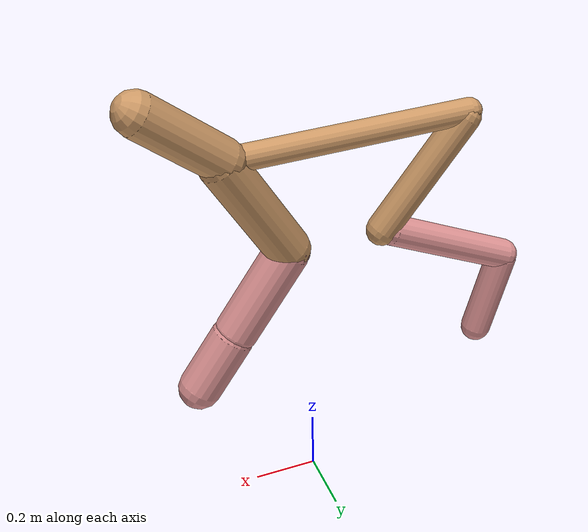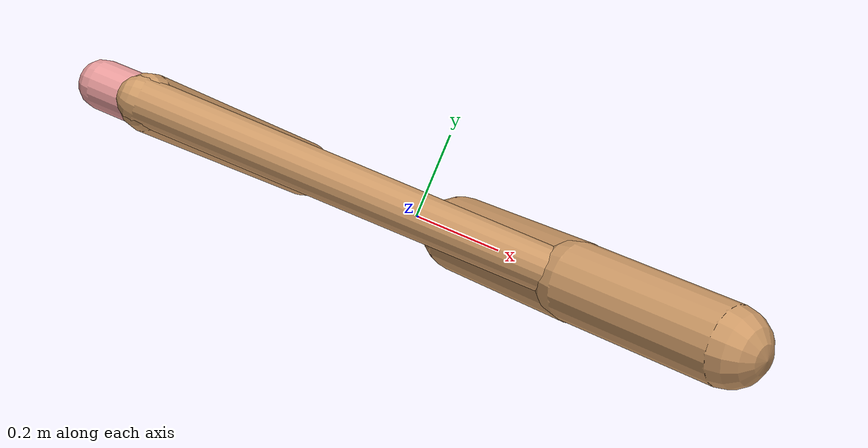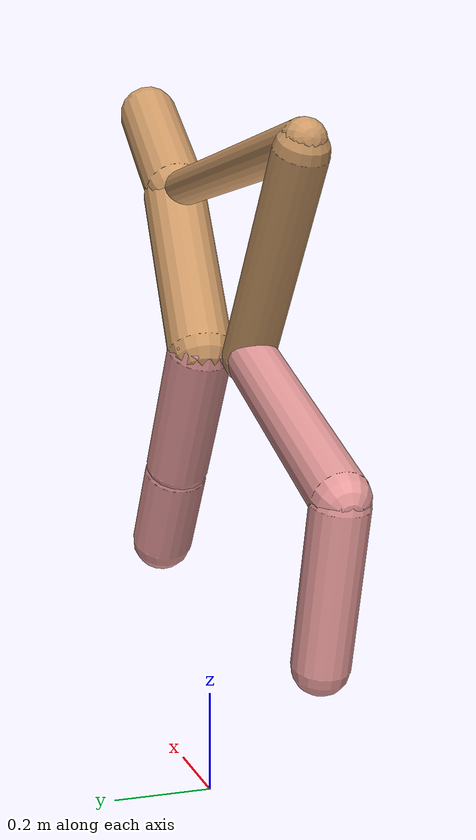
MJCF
<mujoco model="cheetah">
  <compiler angle="radian" coordinate="local" inertiafromgeom="true" settotalmass="14" />
  <default>
    <joint armature=".1" damping=".01" limited="true" solimplimit="0 .8 .03" solreflimit=".02 1" stiffness="8" />
    <geom conaffinity="0" condim="3" contype="1" friction="0.8 .1 .1" rgba="0.8 0.6 .4 1" solimp="0.0 0.8 0.01" solref="0.02 1" />
    <motor ctrllimited="true" ctrlrange="-1 1" />
  </default>
  <size nstack="300000" nuser_geom="1" />
  <option gravity="0 0 -9.81" timestep="0.01" />
  <worldbody>
    <body name="torso" pos="0.0 0.0 1.2367766847731787">
      <joint armature="0" axis="1 0 0" damping="0" limited="false" name="ignorex" pos="0 0 0" stiffness="0" type="slide" />
      <joint armature="0" axis="0 0 1" damping="0" limited="false" name="ignorez" pos="0 0 0" stiffness="0" type="slide" />
      <joint armature="0" axis="0 1 0" damping="0" limited="false" name="ignorey" pos="0 0 0" stiffness="0" type="hinge" />
      <geom fromto="-0.5 0.0 0.0 0.26427945310555034 0.0 0.0" name="torso" size="0.038746801243282225" type="capsule" />
      <geom axisangle="0 1 0 .87" name="head" pos="0.3642794531055503 0.0 0.1" size="0.06598733408575 0.15" type="capsule" />

      <body name="bthigh" pos="-.5 0 0">
        <joint axis="0 1 0" damping="6" name="bthigh" pos="0 0 0" range="-.52 1.05" stiffness="240" type="hinge" />
        <geom axisangle="0 1 0 -3.8" name="bthigh" pos="0.14021642841315035 0.0 -0.18228135693709543" size="0.04824946727327761 0.2109598468577211" type="capsule" />
        <body name="bshin" pos="0.24043285682630067 0.0 -0.35456271387419086">
          <joint axis="0 1 0" damping="4.5" name="bshin" pos="0 0 0" range="-.785 .785" stiffness="180" type="hinge" />
          <geom axisangle="0 1 0 -2.03" name="bshin" pos="-0.2010306350452443 0.0 -0.10051531752262215" rgba="0.9 0.6 0.6 1" size="0.04824946727327761 0.21823432433557358" type="capsule" />
          <body name="bfoot" pos="-0.4020612700904886 0.0 -0.2010306350452443">
            <joint axis="0 1 0" damping="3" name="bfoot" pos="0 0 0" range="-.4 .785" stiffness="120" type="hinge" />
            <geom axisangle="0 1 0 -.27" name="bfoot" pos="0.042634337527262686 0.0 -0.1378510246714827" rgba="0.9 0.6 0.6 1" size="0.04824946727327761 0.1367601765836261" type="capsule" />
            <inertial mass="10" />
          </body>
        </body>
      </body>
      <body name="fthigh" pos="0.26427945310555034 0.0 0.0">
        <joint axis="0 1 0" damping="4.5" name="fthigh" pos="0 0 0" range="-1.5 0.8" stiffness="180" type="hinge" />
        <geom axisangle="0 1 0 .52" name="fthigh" pos="-0.10018177440805774 0.0 -0.17174018469952754" size="0.06739303615137086 0.1928998014951645" type="capsule" />
        <body name="fshin" pos="-0.20036354881611548 0.0 -0.3434803693990551">
          <joint axis="0 1 0" damping="3" name="fshin" pos="0 0 0" range="-1.2 1.1" stiffness="120" type="hinge" />
          <geom axisangle="0 1 0 -.6" name="fshin" pos="0.09295113836821449 0.0 -0.12870157620214312" rgba="0.9 0.6 0.6 1" size="0.06739303615137086 0.15373969141719876" type="capsule" />
          <body name="ffoot" pos="0.18590227673642898 0.0 -0.25740315240428624">
            <joint axis="0 1 0" damping="1.5" name="ffoot" pos="0 0 0" range="-3.1 -0.3" stiffness="60" type="hinge" />
            <geom axisangle="0 1 0 -.6" name="ffoot" pos="0.06204803809299046 0.0 -0.09651917036687406" rgba="0.9 0.6 0.6 1" size="0.06739303615137086 0.10152621131324448" type="capsule" />
            <inertial mass="10" />
          </body>
        </body>
      </body>
    </body>
  </worldbody>
  <actuator>
    <motor gear="120" joint="bthigh" name="bthigh" />
    <motor gear="90" joint="bshin" name="bshin" />
    <motor gear="60" joint="bfoot" name="bfoot" />
    <motor gear="120" joint="fthigh" name="fthigh" />
    <motor gear="60" joint="fshin" name="fshin" />
    <motor gear="30" joint="ffoot" name="ffoot" />
  </actuator>
</mujoco>
